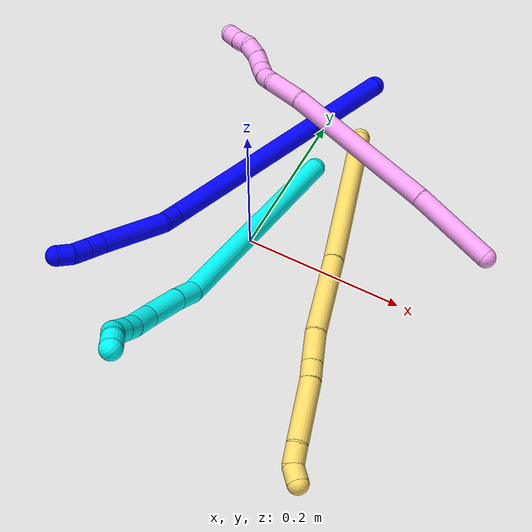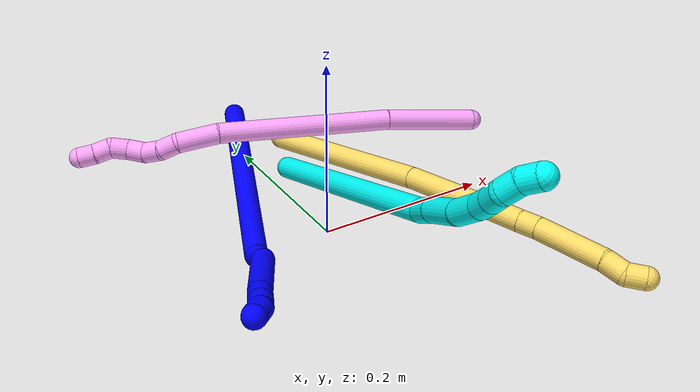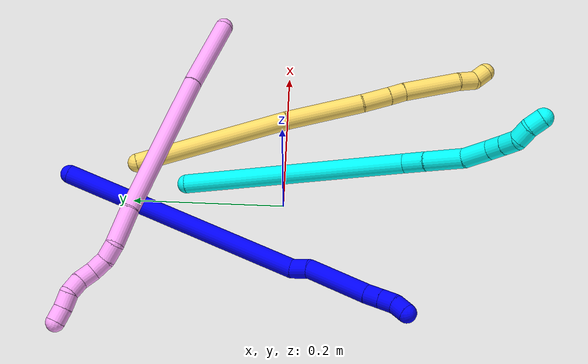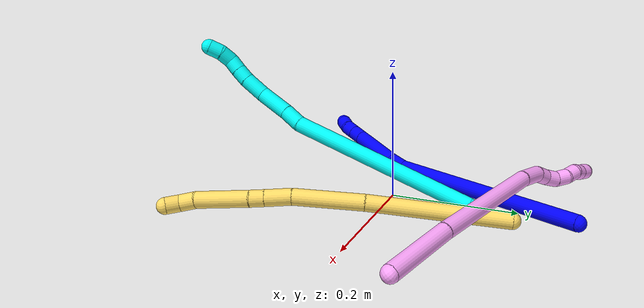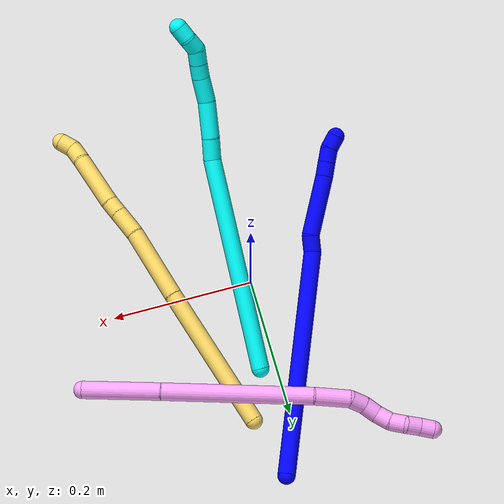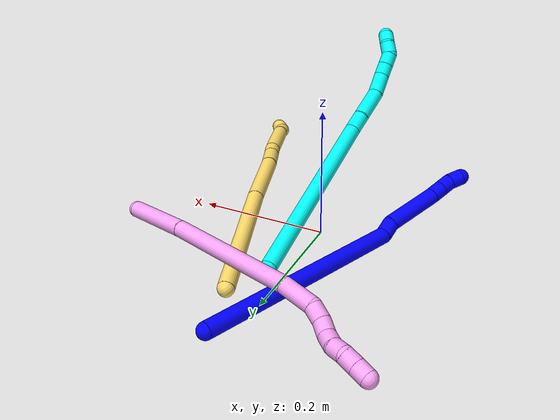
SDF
<sdf version="1.7">
 <world name="default">
  <model name="1">
   <static>0</static>
   <link name="1">
    <collision name="collision-cylinder-e_1_1_4">
     <pose>-0.036503 -0.098496 -0.126231 2.47899 -0.224156 -0.632438</pose>
     <geometry><cylinder><radius>0.0125</radius><length>0.328441</length></cylinder></geometry>
     <surface>
      <friction><ode><mu>1.16</mu><mu2>1.16</mu2><slip1>0</slip1><slip2>0</slip2></ode></friction>
      <contact><ode><kp>1e+06</kp><kd>1</kd><max_vel>0</max_vel><min_depth>0.001</min_depth></ode></contact>
     </surface>
    </collision>
    <visual name="visual-cylinder-e_1_1_4">
     <pose>-0.036503 -0.098496 -0.126231 2.47899 -0.224156 -0.632438</pose>
     <geometry><cylinder><radius>0.0125</radius><length>0.328441</length></cylinder></geometry>
     <material><ambient>0 0 1 1</ambient></material>
    </visual>
    <collision name="collision-cylinder-e_2_4_5">
     <pose>-0.075741 -0.199434 -0.264159 2.93578 -0.224935 -1.66019</pose>
     <geometry><cylinder><radius>0.0125</radius><length>0.024514</length></cylinder></geometry>
     <surface>
      <friction><ode><mu>1.16</mu><mu2>1.16</mu2><slip1>0</slip1><slip2>0</slip2></ode></friction>
      <contact><ode><kp>1e+06</kp><kd>1</kd><max_vel>0</max_vel><min_depth>0.001</min_depth></ode></contact>
     </surface>
    </collision>
    <visual name="visual-cylinder-e_2_4_5">
     <pose>-0.075741 -0.199434 -0.264159 2.93578 -0.224935 -1.66019</pose>
     <geometry><cylinder><radius>0.0125</radius><length>0.024514</length></cylinder></geometry>
     <material><ambient>0 0 1 1</ambient></material>
    </visual>
    <collision name="collision-cylinder-e_3_5_6">
     <pose>-0.07882 -0.222502 -0.313796 2.64366 -0.008 -0.031463</pose>
     <geometry><cylinder><radius>0.0125</radius><length>0.086372</length></cylinder></geometry>
     <surface>
      <friction><ode><mu>1.16</mu><mu2>1.16</mu2><slip1>0</slip1><slip2>0</slip2></ode></friction>
      <contact><ode><kp>1e+06</kp><kd>1</kd><max_vel>0</max_vel><min_depth>0.001</min_depth></ode></contact>
     </surface>
    </collision>
    <visual name="visual-cylinder-e_3_5_6">
     <pose>-0.07882 -0.222502 -0.313796 2.64366 -0.008 -0.031463</pose>
     <geometry><cylinder><radius>0.0125</radius><length>0.086372</length></cylinder></geometry>
     <material><ambient>0 0 1 1</ambient></material>
    </visual>
    <collision name="collision-cylinder-e_4_6_7">
     <pose>-0.079598 -0.247492 -0.361065 2.70393 -0.041959 -0.188143</pose>
     <geometry><cylinder><radius>0.0125</radius><length>0.020617</length></cylinder></geometry>
     <surface>
      <friction><ode><mu>1.16</mu><mu2>1.16</mu2><slip1>0</slip1><slip2>0</slip2></ode></friction>
      <contact><ode><kp>1e+06</kp><kd>1</kd><max_vel>0</max_vel><min_depth>0.001</min_depth></ode></contact>
     </surface>
    </collision>
    <visual name="visual-cylinder-e_4_6_7">
     <pose>-0.079598 -0.247492 -0.361065 2.70393 -0.041959 -0.188143</pose>
     <geometry><cylinder><radius>0.0125</radius><length>0.020617</length></cylinder></geometry>
     <material><ambient>0 0 1 1</ambient></material>
    </visual>
    <collision name="collision-cylinder-e_5_7_8">
     <pose>-0.080353 -0.256126 -0.379438 2.70059 -0.032255 -0.14367</pose>
     <geometry><cylinder><radius>0.0125</radius><length>0.020013</length></cylinder></geometry>
     <surface>
      <friction><ode><mu>1.16</mu><mu2>1.16</mu2><slip1>0</slip1><slip2>0</slip2></ode></friction>
      <contact><ode><kp>1e+06</kp><kd>1</kd><max_vel>0</max_vel><min_depth>0.001</min_depth></ode></contact>
     </surface>
    </collision>
    <visual name="visual-cylinder-e_5_7_8">
     <pose>-0.080353 -0.256126 -0.379438 2.70059 -0.032255 -0.14367</pose>
     <geometry><cylinder><radius>0.0125</radius><length>0.020013</length></cylinder></geometry>
     <material><ambient>0 0 1 1</ambient></material>
    </visual>
    <collision name="collision-cylinder-e_6_8_2">
     <pose>-0.078329 -0.265944 -0.396491 2.53572 0.23643 0.726278</pose>
     <geometry><cylinder><radius>0.0125</radius><length>0.020043</length></cylinder></geometry>
     <surface>
      <friction><ode><mu>1.16</mu><mu2>1.16</mu2><slip1>0</slip1><slip2>0</slip2></ode></friction>
      <contact><ode><kp>1e+06</kp><kd>1</kd><max_vel>0</max_vel><min_depth>0.001</min_depth></ode></contact>
     </surface>
    </collision>
    <visual name="visual-cylinder-e_6_8_2">
     <pose>-0.078329 -0.265944 -0.396491 2.53572 0.23643 0.726278</pose>
     <geometry><cylinder><radius>0.0125</radius><length>0.020043</length></cylinder></geometry>
     <material><ambient>0 0 1 1</ambient></material>
    </visual>
    <collision name="collision-sphere-2">
     <pose>-0.075981 -0.271492 -0.4045 0 -0 0</pose>
     <geometry><sphere><radius>0.0125</radius></sphere></geometry>
     <surface>
      <friction><ode><mu>1.16</mu><mu2>1.16</mu2><slip1>0</slip1><slip2>0</slip2></ode></friction>
      <contact><ode><kp>1e+06</kp><kd>1</kd><max_vel>0</max_vel><min_depth>0.001</min_depth></ode></contact>
     </surface>
    </collision>
    <visual name="visual-sphere-2">
     <pose>-0.075981 -0.271492 -0.4045 0 -0 0</pose>
     <geometry><sphere><radius>0.0125</radius></sphere></geometry>
     <material><ambient>0 0 1 1</ambient></material>
    </visual>
    <collision name="collision-sphere-4">
     <pose>-0.073007 -0.196992 -0.252463 0 -0 0</pose>
     <geometry><sphere><radius>0.0125</radius></sphere></geometry>
     <surface>
      <friction><ode><mu>1.16</mu><mu2>1.16</mu2><slip1>0</slip1><slip2>0</slip2></ode></friction>
      <contact><ode><kp>1e+06</kp><kd>1</kd><max_vel>0</max_vel><min_depth>0.001</min_depth></ode></contact>
     </surface>
    </collision>
    <visual name="visual-sphere-4">
     <pose>-0.073007 -0.196992 -0.252463 0 -0 0</pose>
     <geometry><sphere><radius>0.0125</radius></sphere></geometry>
     <material><ambient>0 0 1 1</ambient></material>
    </visual>
    <collision name="collision-sphere-1">
     <geometry><sphere><radius>0.0125</radius></sphere></geometry>
     <surface>
      <friction><ode><mu>1.16</mu><mu2>1.16</mu2><slip1>0</slip1><slip2>0</slip2></ode></friction>
      <contact><ode><kp>1e+06</kp><kd>1</kd><max_vel>0</max_vel><min_depth>0.001</min_depth></ode></contact>
     </surface>
    </collision>
    <visual name="visual-sphere-1">
     <geometry><sphere><radius>0.0125</radius></sphere></geometry>
     <material><ambient>0 0 1 1</ambient></material>
    </visual>
    <collision name="collision-sphere-8">
     <pose>-0.080676 -0.260395 -0.388482 0 -0 0</pose>
     <geometry><sphere><radius>0.0125</radius></sphere></geometry>
     <surface>
      <friction><ode><mu>1.16</mu><mu2>1.16</mu2><slip1>0</slip1><slip2>0</slip2></ode></friction>
      <contact><ode><kp>1e+06</kp><kd>1</kd><max_vel>0</max_vel><min_depth>0.001</min_depth></ode></contact>
     </surface>
    </collision>
    <visual name="visual-sphere-8">
     <pose>-0.080676 -0.260395 -0.388482 0 -0 0</pose>
     <geometry><sphere><radius>0.0125</radius></sphere></geometry>
     <material><ambient>0 0 1 1</ambient></material>
    </visual>
    <collision name="collision-sphere-5">
     <pose>-0.078475 -0.201876 -0.275855 0 -0 0</pose>
     <geometry><sphere><radius>0.0125</radius></sphere></geometry>
     <surface>
      <friction><ode><mu>1.16</mu><mu2>1.16</mu2><slip1>0</slip1><slip2>0</slip2></ode></friction>
      <contact><ode><kp>1e+06</kp><kd>1</kd><max_vel>0</max_vel><min_depth>0.001</min_depth></ode></contact>
     </surface>
    </collision>
    <visual name="visual-sphere-5">
     <pose>-0.078475 -0.201876 -0.275855 0 -0 0</pose>
     <geometry><sphere><radius>0.0125</radius></sphere></geometry>
     <material><ambient>0 0 1 1</ambient></material>
    </visual>
    <collision name="collision-sphere-6">
     <pose>-0.079166 -0.243127 -0.351736 0 -0 0</pose>
     <geometry><sphere><radius>0.0125</radius></sphere></geometry>
     <surface>
      <friction><ode><mu>1.16</mu><mu2>1.16</mu2><slip1>0</slip1><slip2>0</slip2></ode></friction>
      <contact><ode><kp>1e+06</kp><kd>1</kd><max_vel>0</max_vel><min_depth>0.001</min_depth></ode></contact>
     </surface>
    </collision>
    <visual name="visual-sphere-6">
     <pose>-0.079166 -0.243127 -0.351736 0 -0 0</pose>
     <geometry><sphere><radius>0.0125</radius></sphere></geometry>
     <material><ambient>0 0 1 1</ambient></material>
    </visual>
    <collision name="collision-sphere-7">
     <pose>-0.080031 -0.251857 -0.370394 0 -0 0</pose>
     <geometry><sphere><radius>0.0125</radius></sphere></geometry>
     <surface>
      <friction><ode><mu>1.16</mu><mu2>1.16</mu2><slip1>0</slip1><slip2>0</slip2></ode></friction>
      <contact><ode><kp>1e+06</kp><kd>1</kd><max_vel>0</max_vel><min_depth>0.001</min_depth></ode></contact>
     </surface>
    </collision>
    <visual name="visual-sphere-7">
     <pose>-0.080031 -0.251857 -0.370394 0 -0 0</pose>
     <geometry><sphere><radius>0.0125</radius></sphere></geometry>
     <material><ambient>0 0 1 1</ambient></material>
    </visual>
    <inertial>
     <pose>-0.050946 -0.144032 -0.196046 0 -0 0</pose>
     <mass>0.5</mass>
     <inertia>
      <ixx>0.000674</ixx>
      <ixy>0</ixy>
      <ixz>0</ixz>
      <iyy>-0.003433</iyy>
      <iyz>0</iyz>
      <izz>0.002437</izz>
     </inertia>
    </inertial>
   </link>
   <pose>0.02999 0.287514 0.012297 2.34472 -0.460852 2.49894</pose>
  </model>
  <model name="3">
   <static>0</static>
   <link name="3">
    <collision name="collision-cylinder-e_1_1_4">
     <pose>-0.020196 -0.146232 0.024999 1.40148 -0.135301 -0.114183</pose>
     <geometry><cylinder><radius>0.0125</radius><length>0.299443</length></cylinder></geometry>
     <surface>
      <friction><ode><mu>1.16</mu><mu2>1.16</mu2><slip1>0</slip1><slip2>0</slip2></ode></friction>
      <contact><ode><kp>1e+06</kp><kd>1</kd><max_vel>0</max_vel><min_depth>0.001</min_depth></ode></contact>
     </surface>
    </collision>
    <visual name="visual-cylinder-e_1_1_4">
     <pose>-0.020196 -0.146232 0.024999 1.40148 -0.135301 -0.114183</pose>
     <geometry><cylinder><radius>0.0125</radius><length>0.299443</length></cylinder></geometry>
     <material><ambient>0.003922 1 0.996078 1</ambient></material>
    </visual>
    <collision name="collision-cylinder-e_2_4_5">
     <pose>-0.041389 -0.306306 0.05635 1.14056 -0.0654 -0.041954</pose>
     <geometry><cylinder><radius>0.0125</radius><length>0.030526</length></cylinder></geometry>
     <surface>
      <friction><ode><mu>1.16</mu><mu2>1.16</mu2><slip1>0</slip1><slip2>0</slip2></ode></friction>
      <contact><ode><kp>1e+06</kp><kd>1</kd><max_vel>0</max_vel><min_depth>0.001</min_depth></ode></contact>
     </surface>
    </collision>
    <visual name="visual-cylinder-e_2_4_5">
     <pose>-0.041389 -0.306306 0.05635 1.14056 -0.0654 -0.041954</pose>
     <geometry><cylinder><radius>0.0125</radius><length>0.030526</length></cylinder></geometry>
     <material><ambient>0.003922 1 0.996078 1</ambient></material>
    </visual>
    <collision name="collision-cylinder-e_3_5_6">
     <pose>-0.044723 -0.344234 0.071712 1.21283 -0.090607 -0.062867</pose>
     <geometry><cylinder><radius>0.0125</radius><length>0.051643</length></cylinder></geometry>
     <surface>
      <friction><ode><mu>1.16</mu><mu2>1.16</mu2><slip1>0</slip1><slip2>0</slip2></ode></friction>
      <contact><ode><kp>1e+06</kp><kd>1</kd><max_vel>0</max_vel><min_depth>0.001</min_depth></ode></contact>
     </surface>
    </collision>
    <visual name="visual-cylinder-e_3_5_6">
     <pose>-0.044723 -0.344234 0.071712 1.21283 -0.090607 -0.062867</pose>
     <geometry><cylinder><radius>0.0125</radius><length>0.051643</length></cylinder></geometry>
     <material><ambient>0.003922 1 0.996078 1</ambient></material>
    </visual>
    <collision name="collision-cylinder-e_4_6_7">
     <pose>-0.044718 -0.384816 0.087029 1.20561 0.131795 0.090779</pose>
     <geometry><cylinder><radius>0.0125</radius><length>0.035631</length></cylinder></geometry>
     <surface>
      <friction><ode><mu>1.16</mu><mu2>1.16</mu2><slip1>0</slip1><slip2>0</slip2></ode></friction>
      <contact><ode><kp>1e+06</kp><kd>1</kd><max_vel>0</max_vel><min_depth>0.001</min_depth></ode></contact>
     </surface>
    </collision>
    <visual name="visual-cylinder-e_4_6_7">
     <pose>-0.044718 -0.384816 0.087029 1.20561 0.131795 0.090779</pose>
     <geometry><cylinder><radius>0.0125</radius><length>0.035631</length></cylinder></geometry>
     <material><ambient>0.003922 1 0.996078 1</ambient></material>
    </visual>
    <collision name="collision-cylinder-e_5_7_8">
     <pose>-0.04063 -0.410429 0.09825 1.07647 0.167046 0.099882</pose>
     <geometry><cylinder><radius>0.0125</radius><length>0.021005</length></cylinder></geometry>
     <surface>
      <friction><ode><mu>1.16</mu><mu2>1.16</mu2><slip1>0</slip1><slip2>0</slip2></ode></friction>
      <contact><ode><kp>1e+06</kp><kd>1</kd><max_vel>0</max_vel><min_depth>0.001</min_depth></ode></contact>
     </surface>
    </collision>
    <visual name="visual-cylinder-e_5_7_8">
     <pose>-0.04063 -0.410429 0.09825 1.07647 0.167046 0.099882</pose>
     <geometry><cylinder><radius>0.0125</radius><length>0.021005</length></cylinder></geometry>
     <material><ambient>0.003922 1 0.996078 1</ambient></material>
    </visual>
    <collision name="collision-cylinder-e_6_8_9">
     <pose>-0.03691 -0.428319 0.108525 1.02228 0.189667 0.106594</pose>
     <geometry><cylinder><radius>0.0125</radius><length>0.020939</length></cylinder></geometry>
     <surface>
      <friction><ode><mu>1.16</mu><mu2>1.16</mu2><slip1>0</slip1><slip2>0</slip2></ode></friction>
      <contact><ode><kp>1e+06</kp><kd>1</kd><max_vel>0</max_vel><min_depth>0.001</min_depth></ode></contact>
     </surface>
    </collision>
    <visual name="visual-cylinder-e_6_8_9">
     <pose>-0.03691 -0.428319 0.108525 1.02228 0.189667 0.106594</pose>
     <geometry><cylinder><radius>0.0125</radius><length>0.020939</length></cylinder></geometry>
     <material><ambient>0.003922 1 0.996078 1</ambient></material>
    </visual>
    <collision name="collision-cylinder-e_7_9_10">
     <pose>-0.029239 -0.445538 0.115388 1.39474 0.586275 0.495367</pose>
     <geometry><cylinder><radius>0.0125</radius><length>0.020597</length></cylinder></geometry>
     <surface>
      <friction><ode><mu>1.16</mu><mu2>1.16</mu2><slip1>0</slip1><slip2>0</slip2></ode></friction>
      <contact><ode><kp>1e+06</kp><kd>1</kd><max_vel>0</max_vel><min_depth>0.001</min_depth></ode></contact>
     </surface>
    </collision>
    <visual name="visual-cylinder-e_7_9_10">
     <pose>-0.029239 -0.445538 0.115388 1.39474 0.586275 0.495367</pose>
     <geometry><cylinder><radius>0.0125</radius><length>0.020597</length></cylinder></geometry>
     <material><ambient>0.003922 1 0.996078 1</ambient></material>
    </visual>
    <collision name="collision-cylinder-e_8_10_2">
     <pose>-0.020127 -0.463496 0.116663 1.59478 0.344501 0.352692</pose>
     <geometry><cylinder><radius>0.0125</radius><length>0.020216</length></cylinder></geometry>
     <surface>
      <friction><ode><mu>1.16</mu><mu2>1.16</mu2><slip1>0</slip1><slip2>0</slip2></ode></friction>
      <contact><ode><kp>1e+06</kp><kd>1</kd><max_vel>0</max_vel><min_depth>0.001</min_depth></ode></contact>
     </surface>
    </collision>
    <visual name="visual-cylinder-e_8_10_2">
     <pose>-0.020127 -0.463496 0.116663 1.59478 0.344501 0.352692</pose>
     <geometry><cylinder><radius>0.0125</radius><length>0.020216</length></cylinder></geometry>
     <material><ambient>0.003922 1 0.996078 1</ambient></material>
    </visual>
    <collision name="collision-sphere-2">
     <pose>-0.016714 -0.473007 0.116435 0 -0 0</pose>
     <geometry><sphere><radius>0.0125</radius></sphere></geometry>
     <surface>
      <friction><ode><mu>1.16</mu><mu2>1.16</mu2><slip1>0</slip1><slip2>0</slip2></ode></friction>
      <contact><ode><kp>1e+06</kp><kd>1</kd><max_vel>0</max_vel><min_depth>0.001</min_depth></ode></contact>
     </surface>
    </collision>
    <visual name="visual-sphere-2">
     <pose>-0.016714 -0.473007 0.116435 0 -0 0</pose>
     <geometry><sphere><radius>0.0125</radius></sphere></geometry>
     <material><ambient>0.003922 1 0.996078 1</ambient></material>
    </visual>
    <collision name="collision-sphere-10">
     <pose>-0.023541 -0.453984 0.116891 0 -0 0</pose>
     <geometry><sphere><radius>0.0125</radius></sphere></geometry>
     <surface>
      <friction><ode><mu>1.16</mu><mu2>1.16</mu2><slip1>0</slip1><slip2>0</slip2></ode></friction>
      <contact><ode><kp>1e+06</kp><kd>1</kd><max_vel>0</max_vel><min_depth>0.001</min_depth></ode></contact>
     </surface>
    </collision>
    <visual name="visual-sphere-10">
     <pose>-0.023541 -0.453984 0.116891 0 -0 0</pose>
     <geometry><sphere><radius>0.0125</radius></sphere></geometry>
     <material><ambient>0.003922 1 0.996078 1</ambient></material>
    </visual>
    <collision name="collision-sphere-9">
     <pose>-0.034937 -0.437092 0.113886 0 -0 0</pose>
     <geometry><sphere><radius>0.0125</radius></sphere></geometry>
     <surface>
      <friction><ode><mu>1.16</mu><mu2>1.16</mu2><slip1>0</slip1><slip2>0</slip2></ode></friction>
      <contact><ode><kp>1e+06</kp><kd>1</kd><max_vel>0</max_vel><min_depth>0.001</min_depth></ode></contact>
     </surface>
    </collision>
    <visual name="visual-sphere-9">
     <pose>-0.034937 -0.437092 0.113886 0 -0 0</pose>
     <geometry><sphere><radius>0.0125</radius></sphere></geometry>
     <material><ambient>0.003922 1 0.996078 1</ambient></material>
    </visual>
    <collision name="collision-sphere-4">
     <pose>-0.040391 -0.292464 0.049998 0 -0 0</pose>
     <geometry><sphere><radius>0.0125</radius></sphere></geometry>
     <surface>
      <friction><ode><mu>1.16</mu><mu2>1.16</mu2><slip1>0</slip1><slip2>0</slip2></ode></friction>
      <contact><ode><kp>1e+06</kp><kd>1</kd><max_vel>0</max_vel><min_depth>0.001</min_depth></ode></contact>
     </surface>
    </collision>
    <visual name="visual-sphere-4">
     <pose>-0.040391 -0.292464 0.049998 0 -0 0</pose>
     <geometry><sphere><radius>0.0125</radius></sphere></geometry>
     <material><ambient>0.003922 1 0.996078 1</ambient></material>
    </visual>
    <collision name="collision-sphere-1">
     <geometry><sphere><radius>0.0125</radius></sphere></geometry>
     <surface>
      <friction><ode><mu>1.16</mu><mu2>1.16</mu2><slip1>0</slip1><slip2>0</slip2></ode></friction>
      <contact><ode><kp>1e+06</kp><kd>1</kd><max_vel>0</max_vel><min_depth>0.001</min_depth></ode></contact>
     </surface>
    </collision>
    <visual name="visual-sphere-1">
     <geometry><sphere><radius>0.0125</radius></sphere></geometry>
     <material><ambient>0.003922 1 0.996078 1</ambient></material>
    </visual>
    <collision name="collision-sphere-8">
     <pose>-0.038884 -0.419545 0.103163 0 -0 0</pose>
     <geometry><sphere><radius>0.0125</radius></sphere></geometry>
     <surface>
      <friction><ode><mu>1.16</mu><mu2>1.16</mu2><slip1>0</slip1><slip2>0</slip2></ode></friction>
      <contact><ode><kp>1e+06</kp><kd>1</kd><max_vel>0</max_vel><min_depth>0.001</min_depth></ode></contact>
     </surface>
    </collision>
    <visual name="visual-sphere-8">
     <pose>-0.038884 -0.419545 0.103163 0 -0 0</pose>
     <geometry><sphere><radius>0.0125</radius></sphere></geometry>
     <material><ambient>0.003922 1 0.996078 1</ambient></material>
    </visual>
    <collision name="collision-sphere-5">
     <pose>-0.042386 -0.320148 0.062703 0 -0 0</pose>
     <geometry><sphere><radius>0.0125</radius></sphere></geometry>
     <surface>
      <friction><ode><mu>1.16</mu><mu2>1.16</mu2><slip1>0</slip1><slip2>0</slip2></ode></friction>
      <contact><ode><kp>1e+06</kp><kd>1</kd><max_vel>0</max_vel><min_depth>0.001</min_depth></ode></contact>
     </surface>
    </collision>
    <visual name="visual-sphere-5">
     <pose>-0.042386 -0.320148 0.062703 0 -0 0</pose>
     <geometry><sphere><radius>0.0125</radius></sphere></geometry>
     <material><ambient>0.003922 1 0.996078 1</ambient></material>
    </visual>
    <collision name="collision-sphere-6">
     <pose>-0.047059 -0.368319 0.080722 0 -0 0</pose>
     <geometry><sphere><radius>0.0125</radius></sphere></geometry>
     <surface>
      <friction><ode><mu>1.16</mu><mu2>1.16</mu2><slip1>0</slip1><slip2>0</slip2></ode></friction>
      <contact><ode><kp>1e+06</kp><kd>1</kd><max_vel>0</max_vel><min_depth>0.001</min_depth></ode></contact>
     </surface>
    </collision>
    <visual name="visual-sphere-6">
     <pose>-0.047059 -0.368319 0.080722 0 -0 0</pose>
     <geometry><sphere><radius>0.0125</radius></sphere></geometry>
     <material><ambient>0.003922 1 0.996078 1</ambient></material>
    </visual>
    <collision name="collision-sphere-7">
     <pose>-0.042377 -0.401312 0.093337 0 -0 0</pose>
     <geometry><sphere><radius>0.0125</radius></sphere></geometry>
     <surface>
      <friction><ode><mu>1.16</mu><mu2>1.16</mu2><slip1>0</slip1><slip2>0</slip2></ode></friction>
      <contact><ode><kp>1e+06</kp><kd>1</kd><max_vel>0</max_vel><min_depth>0.001</min_depth></ode></contact>
     </surface>
    </collision>
    <visual name="visual-sphere-7">
     <pose>-0.042377 -0.401312 0.093337 0 -0 0</pose>
     <geometry><sphere><radius>0.0125</radius></sphere></geometry>
     <material><ambient>0.003922 1 0.996078 1</ambient></material>
    </visual>
    <inertial>
     <pose>-0.027699 -0.241527 0.050163 0 -0 0</pose>
     <mass>0.5</mass>
     <inertia>
      <ixx>0.001987</ixx>
      <ixy>0</ixy>
      <ixz>0</ixz>
      <iyy>0.000131</iyy>
      <iyz>0</iyz>
      <izz>0.002534</izz>
     </inertia>
    </inertial>
   </link>
   <pose>0.022541 0.129816 0.0115 -0.380838 -0.681251 0.437455</pose>
  </model>
  <model name="4">
   <static>0</static>
   <link name="4">
    <collision name="collision-cylinder-e_1_1_4">
     <pose>-0.042627 0.021876 0.027488 -0.672202 -0.881519 0.326652</pose>
     <geometry><cylinder><radius>0.0125</radius><length>0.110476</length></cylinder></geometry>
     <surface>
      <friction><ode><mu>1.16</mu><mu2>1.16</mu2><slip1>0</slip1><slip2>0</slip2></ode></friction>
      <contact><ode><kp>1e+06</kp><kd>1</kd><max_vel>0</max_vel><min_depth>0.001</min_depth></ode></contact>
     </surface>
    </collision>
    <visual name="visual-cylinder-e_1_1_4">
     <pose>-0.042627 0.021876 0.027488 -0.672202 -0.881519 0.326652</pose>
     <geometry><cylinder><radius>0.0125</radius><length>0.110476</length></cylinder></geometry>
     <material><ambient>1 0.65098 0.996078 1</ambient></material>
    </visual>
    <collision name="collision-cylinder-e_2_4_5">
     <pose>-0.167581 0.091224 0.100679 -0.804381 -0.895785 0.4032</pose>
     <geometry><cylinder><radius>0.0125</radius><length>0.210903</length></cylinder></geometry>
     <surface>
      <friction><ode><mu>1.16</mu><mu2>1.16</mu2><slip1>0</slip1><slip2>0</slip2></ode></friction>
      <contact><ode><kp>1e+06</kp><kd>1</kd><max_vel>0</max_vel><min_depth>0.001</min_depth></ode></contact>
     </surface>
    </collision>
    <visual name="visual-cylinder-e_2_4_5">
     <pose>-0.167581 0.091224 0.100679 -0.804381 -0.895785 0.4032</pose>
     <geometry><cylinder><radius>0.0125</radius><length>0.210903</length></cylinder></geometry>
     <material><ambient>1 0.65098 0.996078 1</ambient></material>
    </visual>
    <collision name="collision-cylinder-e_3_5_6">
     <pose>-0.269038 0.152931 0.154327 -1.06173 -0.865101 0.529401</pose>
     <geometry><cylinder><radius>0.0125</radius><length>0.050268</length></cylinder></geometry>
     <surface>
      <friction><ode><mu>1.16</mu><mu2>1.16</mu2><slip1>0</slip1><slip2>0</slip2></ode></friction>
      <contact><ode><kp>1e+06</kp><kd>1</kd><max_vel>0</max_vel><min_depth>0.001</min_depth></ode></contact>
     </surface>
    </collision>
    <visual name="visual-cylinder-e_3_5_6">
     <pose>-0.269038 0.152931 0.154327 -1.06173 -0.865101 0.529401</pose>
     <geometry><cylinder><radius>0.0125</radius><length>0.050268</length></cylinder></geometry>
     <material><ambient>1 0.65098 0.996078 1</ambient></material>
    </visual>
    <collision name="collision-cylinder-e_4_6_7">
     <pose>-0.293993 0.176746 0.164397 -1.35254 -0.535577 0.433466</pose>
     <geometry><cylinder><radius>0.0125</radius><length>0.022825</length></cylinder></geometry>
     <surface>
      <friction><ode><mu>1.16</mu><mu2>1.16</mu2><slip1>0</slip1><slip2>0</slip2></ode></friction>
      <contact><ode><kp>1e+06</kp><kd>1</kd><max_vel>0</max_vel><min_depth>0.001</min_depth></ode></contact>
     </surface>
    </collision>
    <visual name="visual-cylinder-e_4_6_7">
     <pose>-0.293993 0.176746 0.164397 -1.35254 -0.535577 0.433466</pose>
     <geometry><cylinder><radius>0.0125</radius><length>0.022825</length></cylinder></geometry>
     <material><ambient>1 0.65098 0.996078 1</ambient></material>
    </visual>
    <collision name="collision-cylinder-e_5_7_8">
     <pose>-0.30341 0.195677 0.171094 -1.11592 -0.332378 0.208611</pose>
     <geometry><cylinder><radius>0.0125</radius><length>0.02202</length></cylinder></geometry>
     <surface>
      <friction><ode><mu>1.16</mu><mu2>1.16</mu2><slip1>0</slip1><slip2>0</slip2></ode></friction>
      <contact><ode><kp>1e+06</kp><kd>1</kd><max_vel>0</max_vel><min_depth>0.001</min_depth></ode></contact>
     </surface>
    </collision>
    <visual name="visual-cylinder-e_5_7_8">
     <pose>-0.30341 0.195677 0.171094 -1.11592 -0.332378 0.208611</pose>
     <geometry><cylinder><radius>0.0125</radius><length>0.02202</length></cylinder></geometry>
     <material><ambient>1 0.65098 0.996078 1</ambient></material>
    </visual>
    <collision name="collision-cylinder-e_6_8_9">
     <pose>-0.311276 0.211701 0.183238 -0.722568 -0.400557 0.153115</pose>
     <geometry><cylinder><radius>0.0125</radius><length>0.021922</length></cylinder></geometry>
     <surface>
      <friction><ode><mu>1.16</mu><mu2>1.16</mu2><slip1>0</slip1><slip2>0</slip2></ode></friction>
      <contact><ode><kp>1e+06</kp><kd>1</kd><max_vel>0</max_vel><min_depth>0.001</min_depth></ode></contact>
     </surface>
    </collision>
    <visual name="visual-cylinder-e_6_8_9">
     <pose>-0.311276 0.211701 0.183238 -0.722568 -0.400557 0.153115</pose>
     <geometry><cylinder><radius>0.0125</radius><length>0.021922</length></cylinder></geometry>
     <material><ambient>1 0.65098 0.996078 1</ambient></material>
    </visual>
    <collision name="collision-cylinder-e_7_9_10">
     <pose>-0.322455 0.223357 0.197328 -0.652411 -0.699592 0.245573</pose>
     <geometry><cylinder><radius>0.0125</radius><length>0.021446</length></cylinder></geometry>
     <surface>
      <friction><ode><mu>1.16</mu><mu2>1.16</mu2><slip1>0</slip1><slip2>0</slip2></ode></friction>
      <contact><ode><kp>1e+06</kp><kd>1</kd><max_vel>0</max_vel><min_depth>0.001</min_depth></ode></contact>
     </surface>
    </collision>
    <visual name="visual-cylinder-e_7_9_10">
     <pose>-0.322455 0.223357 0.197328 -0.652411 -0.699592 0.245573</pose>
     <geometry><cylinder><radius>0.0125</radius><length>0.021446</length></cylinder></geometry>
     <material><ambient>1 0.65098 0.996078 1</ambient></material>
    </visual>
    <collision name="collision-cylinder-e_8_10_11">
     <pose>-0.336426 0.235219 0.205804 -1.29377 -0.779292 0.601497</pose>
     <geometry><cylinder><radius>0.0125</radius><length>0.020112</length></cylinder></geometry>
     <surface>
      <friction><ode><mu>1.16</mu><mu2>1.16</mu2><slip1>0</slip1><slip2>0</slip2></ode></friction>
      <contact><ode><kp>1e+06</kp><kd>1</kd><max_vel>0</max_vel><min_depth>0.001</min_depth></ode></contact>
     </surface>
    </collision>
    <visual name="visual-cylinder-e_8_10_11">
     <pose>-0.336426 0.235219 0.205804 -1.29377 -0.779292 0.601497</pose>
     <geometry><cylinder><radius>0.0125</radius><length>0.020112</length></cylinder></geometry>
     <material><ambient>1 0.65098 0.996078 1</ambient></material>
    </visual>
    <collision name="collision-cylinder-e_9_11_2">
     <pose>-0.350247 0.24871 0.211076 -1.10597 -0.740107 0.470018</pose>
     <geometry><cylinder><radius>0.0125</radius><length>0.020029</length></cylinder></geometry>
     <surface>
      <friction><ode><mu>1.16</mu><mu2>1.16</mu2><slip1>0</slip1><slip2>0</slip2></ode></friction>
      <contact><ode><kp>1e+06</kp><kd>1</kd><max_vel>0</max_vel><min_depth>0.001</min_depth></ode></contact>
     </surface>
    </collision>
    <visual name="visual-cylinder-e_9_11_2">
     <pose>-0.350247 0.24871 0.211076 -1.10597 -0.740107 0.470018</pose>
     <geometry><cylinder><radius>0.0125</radius><length>0.020029</length></cylinder></geometry>
     <material><ambient>1 0.65098 0.996078 1</ambient></material>
    </visual>
    <collision name="collision-sphere-2">
     <pose>-0.357 0.25532 0.21439 0 -0 0</pose>
     <geometry><sphere><radius>0.0125</radius></sphere></geometry>
     <surface>
      <friction><ode><mu>1.16</mu><mu2>1.16</mu2><slip1>0</slip1><slip2>0</slip2></ode></friction>
      <contact><ode><kp>1e+06</kp><kd>1</kd><max_vel>0</max_vel><min_depth>0.001</min_depth></ode></contact>
     </surface>
    </collision>
    <visual name="visual-sphere-2">
     <pose>-0.357 0.25532 0.21439 0 -0 0</pose>
     <geometry><sphere><radius>0.0125</radius></sphere></geometry>
     <material><ambient>1 0.65098 0.996078 1</ambient></material>
    </visual>
    <collision name="collision-sphere-11">
     <pose>-0.343493 0.2421 0.207761 0 -0 0</pose>
     <geometry><sphere><radius>0.0125</radius></sphere></geometry>
     <surface>
      <friction><ode><mu>1.16</mu><mu2>1.16</mu2><slip1>0</slip1><slip2>0</slip2></ode></friction>
      <contact><ode><kp>1e+06</kp><kd>1</kd><max_vel>0</max_vel><min_depth>0.001</min_depth></ode></contact>
     </surface>
    </collision>
    <visual name="visual-sphere-11">
     <pose>-0.343493 0.2421 0.207761 0 -0 0</pose>
     <geometry><sphere><radius>0.0125</radius></sphere></geometry>
     <material><ambient>1 0.65098 0.996078 1</ambient></material>
    </visual>
    <collision name="collision-sphere-10">
     <pose>-0.329359 0.228338 0.203848 0 -0 0</pose>
     <geometry><sphere><radius>0.0125</radius></sphere></geometry>
     <surface>
      <friction><ode><mu>1.16</mu><mu2>1.16</mu2><slip1>0</slip1><slip2>0</slip2></ode></friction>
      <contact><ode><kp>1e+06</kp><kd>1</kd><max_vel>0</max_vel><min_depth>0.001</min_depth></ode></contact>
     </surface>
    </collision>
    <visual name="visual-sphere-10">
     <pose>-0.329359 0.228338 0.203848 0 -0 0</pose>
     <geometry><sphere><radius>0.0125</radius></sphere></geometry>
     <material><ambient>1 0.65098 0.996078 1</ambient></material>
    </visual>
    <collision name="collision-sphere-9">
     <pose>-0.31555 0.218376 0.190809 0 -0 0</pose>
     <geometry><sphere><radius>0.0125</radius></sphere></geometry>
     <surface>
      <friction><ode><mu>1.16</mu><mu2>1.16</mu2><slip1>0</slip1><slip2>0</slip2></ode></friction>
      <contact><ode><kp>1e+06</kp><kd>1</kd><max_vel>0</max_vel><min_depth>0.001</min_depth></ode></contact>
     </surface>
    </collision>
    <visual name="visual-sphere-9">
     <pose>-0.31555 0.218376 0.190809 0 -0 0</pose>
     <geometry><sphere><radius>0.0125</radius></sphere></geometry>
     <material><ambient>1 0.65098 0.996078 1</ambient></material>
    </visual>
    <collision name="collision-sphere-4">
     <pose>-0.085255 0.043752 0.054975 0 -0 0</pose>
     <geometry><sphere><radius>0.0125</radius></sphere></geometry>
     <surface>
      <friction><ode><mu>1.16</mu><mu2>1.16</mu2><slip1>0</slip1><slip2>0</slip2></ode></friction>
      <contact><ode><kp>1e+06</kp><kd>1</kd><max_vel>0</max_vel><min_depth>0.001</min_depth></ode></contact>
     </surface>
    </collision>
    <visual name="visual-sphere-4">
     <pose>-0.085255 0.043752 0.054975 0 -0 0</pose>
     <geometry><sphere><radius>0.0125</radius></sphere></geometry>
     <material><ambient>1 0.65098 0.996078 1</ambient></material>
    </visual>
    <collision name="collision-sphere-1">
     <geometry><sphere><radius>0.0125</radius></sphere></geometry>
     <surface>
      <friction><ode><mu>1.16</mu><mu2>1.16</mu2><slip1>0</slip1><slip2>0</slip2></ode></friction>
      <contact><ode><kp>1e+06</kp><kd>1</kd><max_vel>0</max_vel><min_depth>0.001</min_depth></ode></contact>
     </surface>
    </collision>
    <visual name="visual-sphere-1">
     <geometry><sphere><radius>0.0125</radius></sphere></geometry>
     <material><ambient>1 0.65098 0.996078 1</ambient></material>
    </visual>
    <collision name="collision-sphere-8">
     <pose>-0.307002 0.205026 0.175667 0 -0 0</pose>
     <geometry><sphere><radius>0.0125</radius></sphere></geometry>
     <surface>
      <friction><ode><mu>1.16</mu><mu2>1.16</mu2><slip1>0</slip1><slip2>0</slip2></ode></friction>
      <contact><ode><kp>1e+06</kp><kd>1</kd><max_vel>0</max_vel><min_depth>0.001</min_depth></ode></contact>
     </surface>
    </collision>
    <visual name="visual-sphere-8">
     <pose>-0.307002 0.205026 0.175667 0 -0 0</pose>
     <geometry><sphere><radius>0.0125</radius></sphere></geometry>
     <material><ambient>1 0.65098 0.996078 1</ambient></material>
    </visual>
    <collision name="collision-sphere-5">
     <pose>-0.249907 0.138697 0.146383 0 -0 0</pose>
     <geometry><sphere><radius>0.0125</radius></sphere></geometry>
     <surface>
      <friction><ode><mu>1.16</mu><mu2>1.16</mu2><slip1>0</slip1><slip2>0</slip2></ode></friction>
      <contact><ode><kp>1e+06</kp><kd>1</kd><max_vel>0</max_vel><min_depth>0.001</min_depth></ode></contact>
     </surface>
    </collision>
    <visual name="visual-sphere-5">
     <pose>-0.249907 0.138697 0.146383 0 -0 0</pose>
     <geometry><sphere><radius>0.0125</radius></sphere></geometry>
     <material><ambient>1 0.65098 0.996078 1</ambient></material>
    </visual>
    <collision name="collision-sphere-6">
     <pose>-0.288169 0.167165 0.162272 0 -0 0</pose>
     <geometry><sphere><radius>0.0125</radius></sphere></geometry>
     <surface>
      <friction><ode><mu>1.16</mu><mu2>1.16</mu2><slip1>0</slip1><slip2>0</slip2></ode></friction>
      <contact><ode><kp>1e+06</kp><kd>1</kd><max_vel>0</max_vel><min_depth>0.001</min_depth></ode></contact>
     </surface>
    </collision>
    <visual name="visual-sphere-6">
     <pose>-0.288169 0.167165 0.162272 0 -0 0</pose>
     <geometry><sphere><radius>0.0125</radius></sphere></geometry>
     <material><ambient>1 0.65098 0.996078 1</ambient></material>
    </visual>
    <collision name="collision-sphere-7">
     <pose>-0.299817 0.186328 0.166522 0 -0 0</pose>
     <geometry><sphere><radius>0.0125</radius></sphere></geometry>
     <surface>
      <friction><ode><mu>1.16</mu><mu2>1.16</mu2><slip1>0</slip1><slip2>0</slip2></ode></friction>
      <contact><ode><kp>1e+06</kp><kd>1</kd><max_vel>0</max_vel><min_depth>0.001</min_depth></ode></contact>
     </surface>
    </collision>
    <visual name="visual-sphere-7">
     <pose>-0.299817 0.186328 0.166522 0 -0 0</pose>
     <geometry><sphere><radius>0.0125</radius></sphere></geometry>
     <material><ambient>1 0.65098 0.996078 1</ambient></material>
    </visual>
    <inertial>
     <pose>-0.188976 0.11366 0.112327 0 -0 0</pose>
     <mass>0.5</mass>
     <inertia>
      <ixx>0.000735</ixx>
      <ixy>0</ixy>
      <ixz>0</ixz>
      <iyy>0.001043</iyy>
      <iyz>0</iyz>
      <izz>0.000323</izz>
     </inertia>
    </inertial>
   </link>
   <pose>0.26966 0.096458 0.024457 -0.815856 0.075344 0.361078</pose>
  </model>
  <model name="5">
   <static>0</static>
   <link name="5">
    <collision name="collision-cylinder-e_1_1_4">
     <pose>0.040823 -0.093076 0.025674 1.30165 0.400018 0.306327</pose>
     <geometry><cylinder><radius>0.0125</radius><length>0.209655</length></cylinder></geometry>
     <surface>
      <friction><ode><mu>1.16</mu><mu2>1.16</mu2><slip1>0</slip1><slip2>0</slip2></ode></friction>
      <contact><ode><kp>1e+06</kp><kd>1</kd><max_vel>0</max_vel><min_depth>0.001</min_depth></ode></contact>
     </surface>
    </collision>
    <visual name="visual-cylinder-e_1_1_4">
     <pose>0.040823 -0.093076 0.025674 1.30165 0.400018 0.306327</pose>
     <geometry><cylinder><radius>0.0125</radius><length>0.209655</length></cylinder></geometry>
     <material><ambient>1 0.858824 0.4 1</ambient></material>
    </visual>
    <collision name="collision-cylinder-e_2_4_5">
     <pose>0.102952 -0.23331 0.061009 1.36872 0.416665 0.341599</pose>
     <geometry><cylinder><radius>0.0125</radius><length>0.105283</length></cylinder></geometry>
     <surface>
      <friction><ode><mu>1.16</mu><mu2>1.16</mu2><slip1>0</slip1><slip2>0</slip2></ode></friction>
      <contact><ode><kp>1e+06</kp><kd>1</kd><max_vel>0</max_vel><min_depth>0.001</min_depth></ode></contact>
     </surface>
    </collision>
    <visual name="visual-cylinder-e_2_4_5">
     <pose>0.102952 -0.23331 0.061009 1.36872 0.416665 0.341599</pose>
     <geometry><cylinder><radius>0.0125</radius><length>0.105283</length></cylinder></geometry>
     <material><ambient>1 0.858824 0.4 1</ambient></material>
    </visual>
    <collision name="collision-cylinder-e_3_5_6">
     <pose>0.134708 -0.296848 0.073856 1.37869 0.559549 0.465057</pose>
     <geometry><cylinder><radius>0.0125</radius><length>0.03938</length></cylinder></geometry>
     <surface>
      <friction><ode><mu>1.16</mu><mu2>1.16</mu2><slip1>0</slip1><slip2>0</slip2></ode></friction>
      <contact><ode><kp>1e+06</kp><kd>1</kd><max_vel>0</max_vel><min_depth>0.001</min_depth></ode></contact>
     </surface>
    </collision>
    <visual name="visual-cylinder-e_3_5_6">
     <pose>0.134708 -0.296848 0.073856 1.37869 0.559549 0.465057</pose>
     <geometry><cylinder><radius>0.0125</radius><length>0.03938</length></cylinder></geometry>
     <material><ambient>1 0.858824 0.4 1</ambient></material>
    </visual>
    <collision name="collision-cylinder-e_4_6_7">
     <pose>0.150905 -0.322184 0.079008 1.35473 0.559802 0.454409</pose>
     <geometry><cylinder><radius>0.0125</radius><length>0.02164</length></cylinder></geometry>
     <surface>
      <friction><ode><mu>1.16</mu><mu2>1.16</mu2><slip1>0</slip1><slip2>0</slip2></ode></friction>
      <contact><ode><kp>1e+06</kp><kd>1</kd><max_vel>0</max_vel><min_depth>0.001</min_depth></ode></contact>
     </surface>
    </collision>
    <visual name="visual-cylinder-e_4_6_7">
     <pose>0.150905 -0.322184 0.079008 1.35473 0.559802 0.454409</pose>
     <geometry><cylinder><radius>0.0125</radius><length>0.02164</length></cylinder></geometry>
     <material><ambient>1 0.858824 0.4 1</ambient></material>
    </visual>
    <collision name="collision-cylinder-e_5_7_8">
     <pose>0.175336 -0.365234 0.085325 1.44386 0.497939 0.440458</pose>
     <geometry><cylinder><radius>0.0125</radius><length>0.078243</length></cylinder></geometry>
     <surface>
      <friction><ode><mu>1.16</mu><mu2>1.16</mu2><slip1>0</slip1><slip2>0</slip2></ode></friction>
      <contact><ode><kp>1e+06</kp><kd>1</kd><max_vel>0</max_vel><min_depth>0.001</min_depth></ode></contact>
     </surface>
    </collision>
    <visual name="visual-cylinder-e_5_7_8">
     <pose>0.175336 -0.365234 0.085325 1.44386 0.497939 0.440458</pose>
     <geometry><cylinder><radius>0.0125</radius><length>0.078243</length></cylinder></geometry>
     <material><ambient>1 0.858824 0.4 1</ambient></material>
    </visual>
    <collision name="collision-cylinder-e_6_8_9">
     <pose>0.20102 -0.409505 0.089199 1.61766 0.601981 0.629042</pose>
     <geometry><cylinder><radius>0.0125</radius><length>0.024722</length></cylinder></geometry>
     <surface>
      <friction><ode><mu>1.16</mu><mu2>1.16</mu2><slip1>0</slip1><slip2>0</slip2></ode></friction>
      <contact><ode><kp>1e+06</kp><kd>1</kd><max_vel>0</max_vel><min_depth>0.001</min_depth></ode></contact>
     </surface>
    </collision>
    <visual name="visual-cylinder-e_6_8_9">
     <pose>0.20102 -0.409505 0.089199 1.61766 0.601981 0.629042</pose>
     <geometry><cylinder><radius>0.0125</radius><length>0.024722</length></cylinder></geometry>
     <material><ambient>1 0.858824 0.4 1</ambient></material>
    </visual>
    <collision name="collision-cylinder-e_7_9_2">
     <pose>0.21566 -0.425876 0.092505 1.02255 0.81101 0.472696</pose>
     <geometry><cylinder><radius>0.0125</radius><length>0.021077</length></cylinder></geometry>
     <surface>
      <friction><ode><mu>1.16</mu><mu2>1.16</mu2><slip1>0</slip1><slip2>0</slip2></ode></friction>
      <contact><ode><kp>1e+06</kp><kd>1</kd><max_vel>0</max_vel><min_depth>0.001</min_depth></ode></contact>
     </surface>
    </collision>
    <visual name="visual-cylinder-e_7_9_2">
     <pose>0.21566 -0.425876 0.092505 1.02255 0.81101 0.472696</pose>
     <geometry><cylinder><radius>0.0125</radius><length>0.021077</length></cylinder></geometry>
     <material><ambient>1 0.858824 0.4 1</ambient></material>
    </visual>
    <collision name="collision-sphere-2">
     <pose>0.223301 -0.432071 0.096288 0 -0 0</pose>
     <geometry><sphere><radius>0.0125</radius></sphere></geometry>
     <surface>
      <friction><ode><mu>1.16</mu><mu2>1.16</mu2><slip1>0</slip1><slip2>0</slip2></ode></friction>
      <contact><ode><kp>1e+06</kp><kd>1</kd><max_vel>0</max_vel><min_depth>0.001</min_depth></ode></contact>
     </surface>
    </collision>
    <visual name="visual-sphere-2">
     <pose>0.223301 -0.432071 0.096288 0 -0 0</pose>
     <geometry><sphere><radius>0.0125</radius></sphere></geometry>
     <material><ambient>1 0.858824 0.4 1</ambient></material>
    </visual>
    <collision name="collision-sphere-9">
     <pose>0.20802 -0.419681 0.088722 0 -0 0</pose>
     <geometry><sphere><radius>0.0125</radius></sphere></geometry>
     <surface>
      <friction><ode><mu>1.16</mu><mu2>1.16</mu2><slip1>0</slip1><slip2>0</slip2></ode></friction>
      <contact><ode><kp>1e+06</kp><kd>1</kd><max_vel>0</max_vel><min_depth>0.001</min_depth></ode></contact>
     </surface>
    </collision>
    <visual name="visual-sphere-9">
     <pose>0.20802 -0.419681 0.088722 0 -0 0</pose>
     <geometry><sphere><radius>0.0125</radius></sphere></geometry>
     <material><ambient>1 0.858824 0.4 1</ambient></material>
    </visual>
    <collision name="collision-sphere-4">
     <pose>0.081647 -0.186151 0.051347 0 -0 0</pose>
     <geometry><sphere><radius>0.0125</radius></sphere></geometry>
     <surface>
      <friction><ode><mu>1.16</mu><mu2>1.16</mu2><slip1>0</slip1><slip2>0</slip2></ode></friction>
      <contact><ode><kp>1e+06</kp><kd>1</kd><max_vel>0</max_vel><min_depth>0.001</min_depth></ode></contact>
     </surface>
    </collision>
    <visual name="visual-sphere-4">
     <pose>0.081647 -0.186151 0.051347 0 -0 0</pose>
     <geometry><sphere><radius>0.0125</radius></sphere></geometry>
     <material><ambient>1 0.858824 0.4 1</ambient></material>
    </visual>
    <collision name="collision-sphere-1">
     <geometry><sphere><radius>0.0125</radius></sphere></geometry>
     <surface>
      <friction><ode><mu>1.16</mu><mu2>1.16</mu2><slip1>0</slip1><slip2>0</slip2></ode></friction>
      <contact><ode><kp>1e+06</kp><kd>1</kd><max_vel>0</max_vel><min_depth>0.001</min_depth></ode></contact>
     </surface>
    </collision>
    <visual name="visual-sphere-1">
     <geometry><sphere><radius>0.0125</radius></sphere></geometry>
     <material><ambient>1 0.858824 0.4 1</ambient></material>
    </visual>
    <collision name="collision-sphere-8">
     <pose>0.194021 -0.399328 0.089676 0 -0 0</pose>
     <geometry><sphere><radius>0.0125</radius></sphere></geometry>
     <surface>
      <friction><ode><mu>1.16</mu><mu2>1.16</mu2><slip1>0</slip1><slip2>0</slip2></ode></friction>
      <contact><ode><kp>1e+06</kp><kd>1</kd><max_vel>0</max_vel><min_depth>0.001</min_depth></ode></contact>
     </surface>
    </collision>
    <visual name="visual-sphere-8">
     <pose>0.194021 -0.399328 0.089676 0 -0 0</pose>
     <geometry><sphere><radius>0.0125</radius></sphere></geometry>
     <material><ambient>1 0.858824 0.4 1</ambient></material>
    </visual>
    <collision name="collision-sphere-5">
     <pose>0.124256 -0.280468 0.070671 0 -0 0</pose>
     <geometry><sphere><radius>0.0125</radius></sphere></geometry>
     <surface>
      <friction><ode><mu>1.16</mu><mu2>1.16</mu2><slip1>0</slip1><slip2>0</slip2></ode></friction>
      <contact><ode><kp>1e+06</kp><kd>1</kd><max_vel>0</max_vel><min_depth>0.001</min_depth></ode></contact>
     </surface>
    </collision>
    <visual name="visual-sphere-5">
     <pose>0.124256 -0.280468 0.070671 0 -0 0</pose>
     <geometry><sphere><radius>0.0125</radius></sphere></geometry>
     <material><ambient>1 0.858824 0.4 1</ambient></material>
    </visual>
    <collision name="collision-sphere-6">
     <pose>0.145159 -0.313228 0.077042 0 -0 0</pose>
     <geometry><sphere><radius>0.0125</radius></sphere></geometry>
     <surface>
      <friction><ode><mu>1.16</mu><mu2>1.16</mu2><slip1>0</slip1><slip2>0</slip2></ode></friction>
      <contact><ode><kp>1e+06</kp><kd>1</kd><max_vel>0</max_vel><min_depth>0.001</min_depth></ode></contact>
     </surface>
    </collision>
    <visual name="visual-sphere-6">
     <pose>0.145159 -0.313228 0.077042 0 -0 0</pose>
     <geometry><sphere><radius>0.0125</radius></sphere></geometry>
     <material><ambient>1 0.858824 0.4 1</ambient></material>
    </visual>
    <collision name="collision-sphere-7">
     <pose>0.156651 -0.331139 0.080974 0 -0 0</pose>
     <geometry><sphere><radius>0.0125</radius></sphere></geometry>
     <surface>
      <friction><ode><mu>1.16</mu><mu2>1.16</mu2><slip1>0</slip1><slip2>0</slip2></ode></friction>
      <contact><ode><kp>1e+06</kp><kd>1</kd><max_vel>0</max_vel><min_depth>0.001</min_depth></ode></contact>
     </surface>
    </collision>
    <visual name="visual-sphere-7">
     <pose>0.156651 -0.331139 0.080974 0 -0 0</pose>
     <geometry><sphere><radius>0.0125</radius></sphere></geometry>
     <material><ambient>1 0.858824 0.4 1</ambient></material>
    </visual>
    <inertial>
     <pose>0.102404 -0.220832 0.05451 0 -0 0</pose>
     <mass>0.5</mass>
     <inertia>
      <ixx>0.001097</ixx>
      <ixy>0</ixy>
      <ixz>0</ixz>
      <iyy>0.00057</iyy>
      <iyz>0</iyz>
      <izz>0.000464</izz>
     </inertia>
    </inertial>
   </link>
   <pose>0.051826 0.199557 0.011486 -0.185408 0.607354 -0.288963</pose>
  </model>
 </world>
</sdf>
